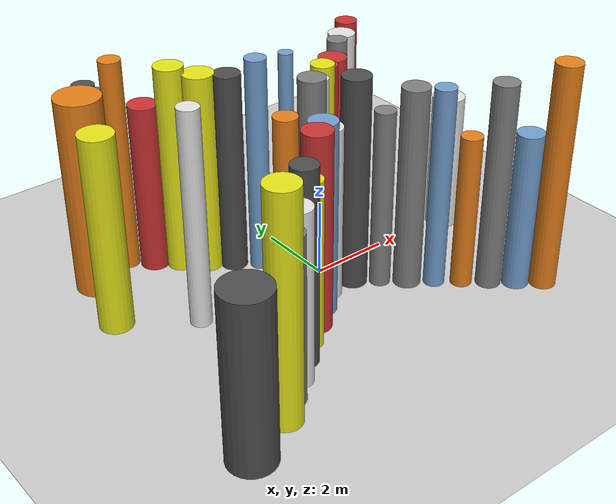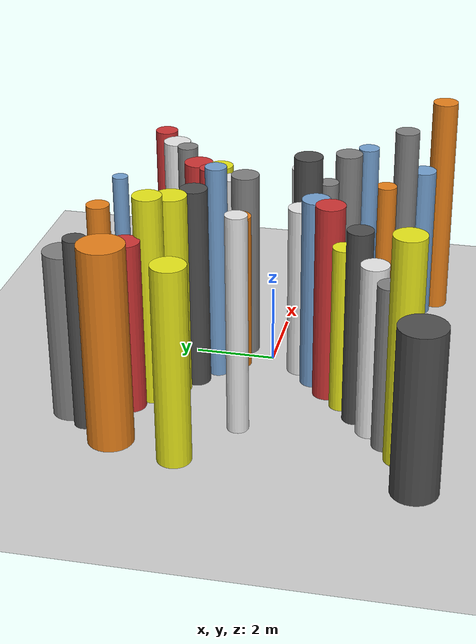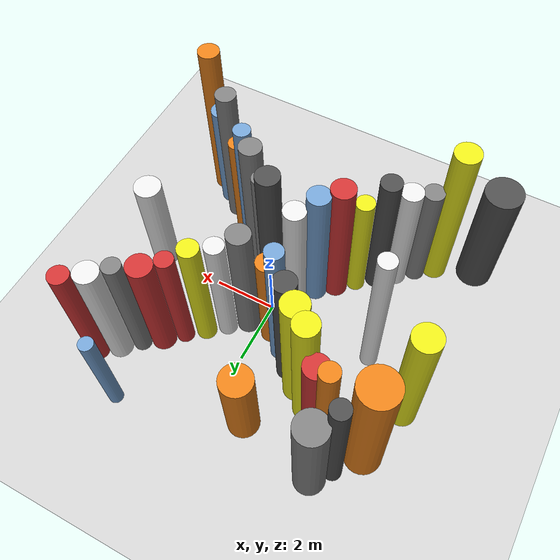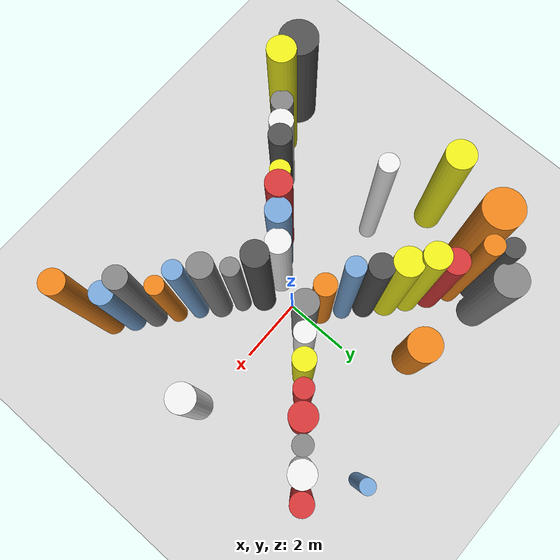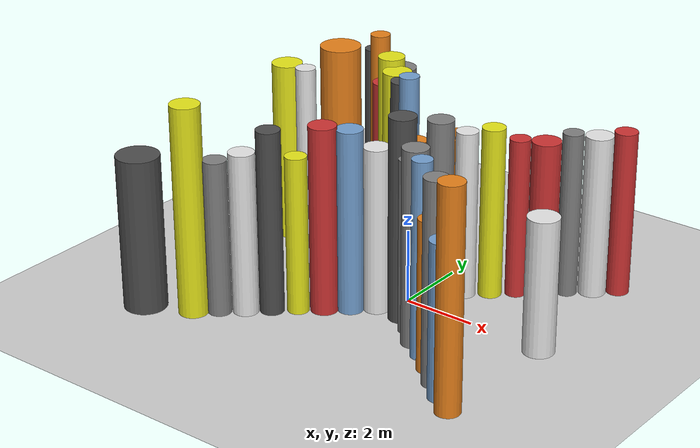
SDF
<?xml version='1.0'?>
<sdf version='1.6'>
  <world name='routeA_rl_v1__dense_recovery__rl_train__bottleneck_corridor__000070'>
    <!-- Sun light -->
    <light name='sun' type='directional'>
      <cast_shadows>1</cast_shadows>
      <pose>0 0 10 0 0 0</pose>
      <diffuse>0.8 0.8 0.8 1</diffuse>
      <specular>0.2 0.2 0.2 1</specular>
      <attenuation>
        <range>1000</range>
        <constant>0.9</constant>
        <linear>0.01</linear>
        <quadratic>0.001</quadratic>
      </attenuation>
      <direction>-0.5 0.1 -0.9</direction>
    </light>

    <!-- Ground plane -->
    <model name='ground_plane'>
      <static>1</static>
      <link name='link'>
        <collision name='collision'>
          <geometry>
            <plane>
              <normal>0 0 1</normal>
              <size>100 100</size>
            </plane>
          </geometry>
          <surface>
            <contact>
              <collide_bitmask>65535</collide_bitmask>
              <ode/>
            </contact>
            <friction>
              <ode>
                <mu>100</mu>
                <mu2>50</mu2>
              </ode>
              <torsional><ode/></torsional>
            </friction>
            <bounce/>
          </surface>
          <max_contacts>10</max_contacts>
        </collision>
        <visual name='visual'>
          <cast_shadows>0</cast_shadows>
          <geometry>
            <plane>
              <normal>0 0 1</normal>
              <size>100 100</size>
            </plane>
          </geometry>
          <material>
            <script>
              <uri>file://media/materials/scripts/gazebo.material</uri>
              <n>Gazebo/Grey</n>
            </script>
          </material>
        </visual>
      </link>
    </model>

    <!-- Environment -->
    <magnetic_field>6e-06 2.3e-05 -4.2e-05</magnetic_field>
    <atmosphere type='adiabatic'/>
    <physics name='default_physics' default='0' type='ode'>
      <gravity>0 0 -9.8</gravity>
      <max_step_size>0.004</max_step_size>
      <real_time_factor>1</real_time_factor>
      <real_time_update_rate>250</real_time_update_rate>
    </physics>
    <scene>
      <ambient>0.4 0.4 0.4 1</ambient>
      <background>0.7 0.7 0.7 1</background>
      <shadows>1</shadows>
    </scene>
    <wind/>
    <spherical_coordinates>
      <surface_model>EARTH_WGS84</surface_model>
      <latitude_deg>0</latitude_deg>
      <longitude_deg>0</longitude_deg>
      <elevation>0</elevation>
      <heading_deg>0</heading_deg>
    </spherical_coordinates>

    <!-- ============ OBSTACLES (40) ============ -->
    <model name='funnel_l_0'>
      <static>1</static>
      <link name='link'>
        <visual name='visual'>
          <geometry>
            <cylinder>
              <radius>0.3938</radius>
              <length>5.7354</length>
            </cylinder>
          </geometry>
          <material>
            <script>
              <n>Gazebo/Yellow</n>
              <uri>file://media/materials/scripts/gazebo.material</uri>
            </script>
            <ambient>0.9 0.9 0.1 1</ambient>
          </material>
        </visual>
        <collision name='collision'>
          <geometry>
            <cylinder>
              <radius>0.3938</radius>
              <length>5.7354</length>
            </cylinder>
          </geometry>
          <max_contacts>10</max_contacts>
          <surface>
            <contact><ode/></contact>
            <bounce/>
            <friction>
              <ode><mu>1</mu><mu2>1</mu2></ode>
              <torsional><ode/></torsional>
            </friction>
          </surface>
        </collision>
      </link>
      <pose>-4.0000 -3.8000 2.8677 0 0 0.0000</pose>
    </model>

    <model name='funnel_r_0'>
      <static>1</static>
      <link name='link'>
        <visual name='visual'>
          <geometry>
            <cylinder>
              <radius>0.2779</radius>
              <length>4.9308</length>
            </cylinder>
          </geometry>
          <material>
            <script>
              <n>Gazebo/DarkGrey</n>
              <uri>file://media/materials/scripts/gazebo.material</uri>
            </script>
            <ambient>0.3 0.3 0.3 1</ambient>
          </material>
        </visual>
        <collision name='collision'>
          <geometry>
            <cylinder>
              <radius>0.2779</radius>
              <length>4.9308</length>
            </cylinder>
          </geometry>
          <max_contacts>10</max_contacts>
          <surface>
            <contact><ode/></contact>
            <bounce/>
            <friction>
              <ode><mu>1</mu><mu2>1</mu2></ode>
              <torsional><ode/></torsional>
            </friction>
          </surface>
        </collision>
      </link>
      <pose>-4.0000 3.8000 2.4654 0 0 0.0000</pose>
    </model>

    <model name='funnel_l_1'>
      <static>1</static>
      <link name='link'>
        <visual name='visual'>
          <geometry>
            <cylinder>
              <radius>0.3140</radius>
              <length>4.2421</length>
            </cylinder>
          </geometry>
          <material>
            <script>
              <n>Gazebo/Grey</n>
              <uri>file://media/materials/scripts/gazebo.material</uri>
            </script>
            <ambient>0.5 0.5 0.5 1</ambient>
          </material>
        </visual>
        <collision name='collision'>
          <geometry>
            <cylinder>
              <radius>0.3140</radius>
              <length>4.2421</length>
            </cylinder>
          </geometry>
          <max_contacts>10</max_contacts>
          <surface>
            <contact><ode/></contact>
            <bounce/>
            <friction>
              <ode><mu>1</mu><mu2>1</mu2></ode>
              <torsional><ode/></torsional>
            </friction>
          </surface>
        </collision>
      </link>
      <pose>-3.4857 -3.3714 2.1211 0 0 0.0000</pose>
    </model>

    <model name='funnel_r_1'>
      <static>1</static>
      <link name='link'>
        <visual name='visual'>
          <geometry>
            <cylinder>
              <radius>0.2706</radius>
              <length>5.5764</length>
            </cylinder>
          </geometry>
          <material>
            <script>
              <n>Gazebo/Orange</n>
              <uri>file://media/materials/scripts/gazebo.material</uri>
            </script>
            <ambient>0.9 0.5 0.1 1</ambient>
          </material>
        </visual>
        <collision name='collision'>
          <geometry>
            <cylinder>
              <radius>0.2706</radius>
              <length>5.5764</length>
            </cylinder>
          </geometry>
          <max_contacts>10</max_contacts>
          <surface>
            <contact><ode/></contact>
            <bounce/>
            <friction>
              <ode><mu>1</mu><mu2>1</mu2></ode>
              <torsional><ode/></torsional>
            </friction>
          </surface>
        </collision>
      </link>
      <pose>-3.4857 3.3714 2.7882 0 0 0.0000</pose>
    </model>

    <model name='funnel_l_2'>
      <static>1</static>
      <link name='link'>
        <visual name='visual'>
          <geometry>
            <cylinder>
              <radius>0.3417</radius>
              <length>4.4376</length>
            </cylinder>
          </geometry>
          <material>
            <script>
              <n>Gazebo/White</n>
              <uri>file://media/materials/scripts/gazebo.material</uri>
            </script>
            <ambient>0.9 0.9 0.9 1</ambient>
          </material>
        </visual>
        <collision name='collision'>
          <geometry>
            <cylinder>
              <radius>0.3417</radius>
              <length>4.4376</length>
            </cylinder>
          </geometry>
          <max_contacts>10</max_contacts>
          <surface>
            <contact><ode/></contact>
            <bounce/>
            <friction>
              <ode><mu>1</mu><mu2>1</mu2></ode>
              <torsional><ode/></torsional>
            </friction>
          </surface>
        </collision>
      </link>
      <pose>-2.9714 -2.9429 2.2188 0 0 0.0000</pose>
    </model>

    <model name='funnel_r_2'>
      <static>1</static>
      <link name='link'>
        <visual name='visual'>
          <geometry>
            <cylinder>
              <radius>0.3644</radius>
              <length>4.4568</length>
            </cylinder>
          </geometry>
          <material>
            <script>
              <n>Gazebo/Red</n>
              <uri>file://media/materials/scripts/gazebo.material</uri>
            </script>
            <ambient>0.8 0.2 0.2 1</ambient>
          </material>
        </visual>
        <collision name='collision'>
          <geometry>
            <cylinder>
              <radius>0.3644</radius>
              <length>4.4568</length>
            </cylinder>
          </geometry>
          <max_contacts>10</max_contacts>
          <surface>
            <contact><ode/></contact>
            <bounce/>
            <friction>
              <ode><mu>1</mu><mu2>1</mu2></ode>
              <torsional><ode/></torsional>
            </friction>
          </surface>
        </collision>
      </link>
      <pose>-2.9714 2.9429 2.2284 0 0 0.0000</pose>
    </model>

    <model name='funnel_l_3'>
      <static>1</static>
      <link name='link'>
        <visual name='visual'>
          <geometry>
            <cylinder>
              <radius>0.3178</radius>
              <length>5.0241</length>
            </cylinder>
          </geometry>
          <material>
            <script>
              <n>Gazebo/DarkGrey</n>
              <uri>file://media/materials/scripts/gazebo.material</uri>
            </script>
            <ambient>0.3 0.3 0.3 1</ambient>
          </material>
        </visual>
        <collision name='collision'>
          <geometry>
            <cylinder>
              <radius>0.3178</radius>
              <length>5.0241</length>
            </cylinder>
          </geometry>
          <max_contacts>10</max_contacts>
          <surface>
            <contact><ode/></contact>
            <bounce/>
            <friction>
              <ode><mu>1</mu><mu2>1</mu2></ode>
              <torsional><ode/></torsional>
            </friction>
          </surface>
        </collision>
      </link>
      <pose>-2.4571 -2.5143 2.5121 0 0 0.0000</pose>
    </model>

    <model name='funnel_r_3'>
      <static>1</static>
      <link name='link'>
        <visual name='visual'>
          <geometry>
            <cylinder>
              <radius>0.3599</radius>
              <length>5.4372</length>
            </cylinder>
          </geometry>
          <material>
            <script>
              <n>Gazebo/Yellow</n>
              <uri>file://media/materials/scripts/gazebo.material</uri>
            </script>
            <ambient>0.9 0.9 0.1 1</ambient>
          </material>
        </visual>
        <collision name='collision'>
          <geometry>
            <cylinder>
              <radius>0.3599</radius>
              <length>5.4372</length>
            </cylinder>
          </geometry>
          <max_contacts>10</max_contacts>
          <surface>
            <contact><ode/></contact>
            <bounce/>
            <friction>
              <ode><mu>1</mu><mu2>1</mu2></ode>
              <torsional><ode/></torsional>
            </friction>
          </surface>
        </collision>
      </link>
      <pose>-2.4571 2.5143 2.7186 0 0 0.0000</pose>
    </model>

    <model name='funnel_l_4'>
      <static>1</static>
      <link name='link'>
        <visual name='visual'>
          <geometry>
            <cylinder>
              <radius>0.2877</radius>
              <length>4.3119</length>
            </cylinder>
          </geometry>
          <material>
            <script>
              <n>Gazebo/Yellow</n>
              <uri>file://media/materials/scripts/gazebo.material</uri>
            </script>
            <ambient>0.9 0.9 0.1 1</ambient>
          </material>
        </visual>
        <collision name='collision'>
          <geometry>
            <cylinder>
              <radius>0.2877</radius>
              <length>4.3119</length>
            </cylinder>
          </geometry>
          <max_contacts>10</max_contacts>
          <surface>
            <contact><ode/></contact>
            <bounce/>
            <friction>
              <ode><mu>1</mu><mu2>1</mu2></ode>
              <torsional><ode/></torsional>
            </friction>
          </surface>
        </collision>
      </link>
      <pose>-1.9429 -2.0857 2.1559 0 0 0.0000</pose>
    </model>

    <model name='funnel_r_4'>
      <static>1</static>
      <link name='link'>
        <visual name='visual'>
          <geometry>
            <cylinder>
              <radius>0.3925</radius>
              <length>5.2626</length>
            </cylinder>
          </geometry>
          <material>
            <script>
              <n>Gazebo/Yellow</n>
              <uri>file://media/materials/scripts/gazebo.material</uri>
            </script>
            <ambient>0.9 0.9 0.1 1</ambient>
          </material>
        </visual>
        <collision name='collision'>
          <geometry>
            <cylinder>
              <radius>0.3925</radius>
              <length>5.2626</length>
            </cylinder>
          </geometry>
          <max_contacts>10</max_contacts>
          <surface>
            <contact><ode/></contact>
            <bounce/>
            <friction>
              <ode><mu>1</mu><mu2>1</mu2></ode>
              <torsional><ode/></torsional>
            </friction>
          </surface>
        </collision>
      </link>
      <pose>-1.9429 2.0857 2.6313 0 0 0.0000</pose>
    </model>

    <model name='funnel_l_5'>
      <static>1</static>
      <link name='link'>
        <visual name='visual'>
          <geometry>
            <cylinder>
              <radius>0.3652</radius>
              <length>5.1216</length>
            </cylinder>
          </geometry>
          <material>
            <script>
              <n>Gazebo/Red</n>
              <uri>file://media/materials/scripts/gazebo.material</uri>
            </script>
            <ambient>0.8 0.2 0.2 1</ambient>
          </material>
        </visual>
        <collision name='collision'>
          <geometry>
            <cylinder>
              <radius>0.3652</radius>
              <length>5.1216</length>
            </cylinder>
          </geometry>
          <max_contacts>10</max_contacts>
          <surface>
            <contact><ode/></contact>
            <bounce/>
            <friction>
              <ode><mu>1</mu><mu2>1</mu2></ode>
              <torsional><ode/></torsional>
            </friction>
          </surface>
        </collision>
      </link>
      <pose>-1.4286 -1.6571 2.5608 0 0 0.0000</pose>
    </model>

    <model name='funnel_r_5'>
      <static>1</static>
      <link name='link'>
        <visual name='visual'>
          <geometry>
            <cylinder>
              <radius>0.3339</radius>
              <length>5.2576</length>
            </cylinder>
          </geometry>
          <material>
            <script>
              <n>Gazebo/DarkGrey</n>
              <uri>file://media/materials/scripts/gazebo.material</uri>
            </script>
            <ambient>0.3 0.3 0.3 1</ambient>
          </material>
        </visual>
        <collision name='collision'>
          <geometry>
            <cylinder>
              <radius>0.3339</radius>
              <length>5.2576</length>
            </cylinder>
          </geometry>
          <max_contacts>10</max_contacts>
          <surface>
            <contact><ode/></contact>
            <bounce/>
            <friction>
              <ode><mu>1</mu><mu2>1</mu2></ode>
              <torsional><ode/></torsional>
            </friction>
          </surface>
        </collision>
      </link>
      <pose>-1.4286 1.6571 2.6288 0 0 0.0000</pose>
    </model>

    <model name='funnel_l_6'>
      <static>1</static>
      <link name='link'>
        <visual name='visual'>
          <geometry>
            <cylinder>
              <radius>0.3517</radius>
              <length>5.0143</length>
            </cylinder>
          </geometry>
          <material>
            <script>
              <n>Gazebo/Blue</n>
              <uri>file://media/materials/scripts/gazebo.material</uri>
            </script>
            <ambient>0.447 0.624 0.812 1</ambient>
          </material>
        </visual>
        <collision name='collision'>
          <geometry>
            <cylinder>
              <radius>0.3517</radius>
              <length>5.0143</length>
            </cylinder>
          </geometry>
          <max_contacts>10</max_contacts>
          <surface>
            <contact><ode/></contact>
            <bounce/>
            <friction>
              <ode><mu>1</mu><mu2>1</mu2></ode>
              <torsional><ode/></torsional>
            </friction>
          </surface>
        </collision>
      </link>
      <pose>-0.9143 -1.2286 2.5071 0 0 0.0000</pose>
    </model>

    <model name='funnel_r_6'>
      <static>1</static>
      <link name='link'>
        <visual name='visual'>
          <geometry>
            <cylinder>
              <radius>0.2664</radius>
              <length>5.6462</length>
            </cylinder>
          </geometry>
          <material>
            <script>
              <n>Gazebo/Blue</n>
              <uri>file://media/materials/scripts/gazebo.material</uri>
            </script>
            <ambient>0.447 0.624 0.812 1</ambient>
          </material>
        </visual>
        <collision name='collision'>
          <geometry>
            <cylinder>
              <radius>0.2664</radius>
              <length>5.6462</length>
            </cylinder>
          </geometry>
          <max_contacts>10</max_contacts>
          <surface>
            <contact><ode/></contact>
            <bounce/>
            <friction>
              <ode><mu>1</mu><mu2>1</mu2></ode>
              <torsional><ode/></torsional>
            </friction>
          </surface>
        </collision>
      </link>
      <pose>-0.9143 1.2286 2.8231 0 0 0.0000</pose>
    </model>

    <model name='funnel_l_7'>
      <static>1</static>
      <link name='link'>
        <visual name='visual'>
          <geometry>
            <cylinder>
              <radius>0.3499</radius>
              <length>4.5294</length>
            </cylinder>
          </geometry>
          <material>
            <script>
              <n>Gazebo/White</n>
              <uri>file://media/materials/scripts/gazebo.material</uri>
            </script>
            <ambient>0.9 0.9 0.9 1</ambient>
          </material>
        </visual>
        <collision name='collision'>
          <geometry>
            <cylinder>
              <radius>0.3499</radius>
              <length>4.5294</length>
            </cylinder>
          </geometry>
          <max_contacts>10</max_contacts>
          <surface>
            <contact><ode/></contact>
            <bounce/>
            <friction>
              <ode><mu>1</mu><mu2>1</mu2></ode>
              <torsional><ode/></torsional>
            </friction>
          </surface>
        </collision>
      </link>
      <pose>-0.4000 -0.8000 2.2647 0 0 0.0000</pose>
    </model>

    <model name='funnel_r_7'>
      <static>1</static>
      <link name='link'>
        <visual name='visual'>
          <geometry>
            <cylinder>
              <radius>0.3172</radius>
              <length>4.1648</length>
            </cylinder>
          </geometry>
          <material>
            <script>
              <n>Gazebo/Orange</n>
              <uri>file://media/materials/scripts/gazebo.material</uri>
            </script>
            <ambient>0.9 0.5 0.1 1</ambient>
          </material>
        </visual>
        <collision name='collision'>
          <geometry>
            <cylinder>
              <radius>0.3172</radius>
              <length>4.1648</length>
            </cylinder>
          </geometry>
          <max_contacts>10</max_contacts>
          <surface>
            <contact><ode/></contact>
            <bounce/>
            <friction>
              <ode><mu>1</mu><mu2>1</mu2></ode>
              <torsional><ode/></torsional>
            </friction>
          </surface>
        </collision>
      </link>
      <pose>-0.4000 0.8000 2.0824 0 0 0.0000</pose>
    </model>

    <model name='funnel_out_l_0'>
      <static>1</static>
      <link name='link'>
        <visual name='visual'>
          <geometry>
            <cylinder>
              <radius>0.3571</radius>
              <length>5.5500</length>
            </cylinder>
          </geometry>
          <material>
            <script>
              <n>Gazebo/DarkGrey</n>
              <uri>file://media/materials/scripts/gazebo.material</uri>
            </script>
            <ambient>0.3 0.3 0.3 1</ambient>
          </material>
        </visual>
        <collision name='collision'>
          <geometry>
            <cylinder>
              <radius>0.3571</radius>
              <length>5.5500</length>
            </cylinder>
          </geometry>
          <max_contacts>10</max_contacts>
          <surface>
            <contact><ode/></contact>
            <bounce/>
            <friction>
              <ode><mu>1</mu><mu2>1</mu2></ode>
              <torsional><ode/></torsional>
            </friction>
          </surface>
        </collision>
      </link>
      <pose>0.4000 -0.8000 2.7750 0 0 0.0000</pose>
    </model>

    <model name='funnel_out_r_0'>
      <static>1</static>
      <link name='link'>
        <visual name='visual'>
          <geometry>
            <cylinder>
              <radius>0.3539</radius>
              <length>4.9328</length>
            </cylinder>
          </geometry>
          <material>
            <script>
              <n>Gazebo/Grey</n>
              <uri>file://media/materials/scripts/gazebo.material</uri>
            </script>
            <ambient>0.5 0.5 0.5 1</ambient>
          </material>
        </visual>
        <collision name='collision'>
          <geometry>
            <cylinder>
              <radius>0.3539</radius>
              <length>4.9328</length>
            </cylinder>
          </geometry>
          <max_contacts>10</max_contacts>
          <surface>
            <contact><ode/></contact>
            <bounce/>
            <friction>
              <ode><mu>1</mu><mu2>1</mu2></ode>
              <torsional><ode/></torsional>
            </friction>
          </surface>
        </collision>
      </link>
      <pose>0.4000 0.8000 2.4664 0 0 0.0000</pose>
    </model>

    <model name='funnel_out_l_1'>
      <static>1</static>
      <link name='link'>
        <visual name='visual'>
          <geometry>
            <cylinder>
              <radius>0.2581</radius>
              <length>4.6932</length>
            </cylinder>
          </geometry>
          <material>
            <script>
              <n>Gazebo/Grey</n>
              <uri>file://media/materials/scripts/gazebo.material</uri>
            </script>
            <ambient>0.5 0.5 0.5 1</ambient>
          </material>
        </visual>
        <collision name='collision'>
          <geometry>
            <cylinder>
              <radius>0.2581</radius>
              <length>4.6932</length>
            </cylinder>
          </geometry>
          <max_contacts>10</max_contacts>
          <surface>
            <contact><ode/></contact>
            <bounce/>
            <friction>
              <ode><mu>1</mu><mu2>1</mu2></ode>
              <torsional><ode/></torsional>
            </friction>
          </surface>
        </collision>
      </link>
      <pose>0.9143 -1.2286 2.3466 0 0 0.0000</pose>
    </model>

    <model name='funnel_out_r_1'>
      <static>1</static>
      <link name='link'>
        <visual name='visual'>
          <geometry>
            <cylinder>
              <radius>0.2920</radius>
              <length>4.6092</length>
            </cylinder>
          </geometry>
          <material>
            <script>
              <n>Gazebo/White</n>
              <uri>file://media/materials/scripts/gazebo.material</uri>
            </script>
            <ambient>0.9 0.9 0.9 1</ambient>
          </material>
        </visual>
        <collision name='collision'>
          <geometry>
            <cylinder>
              <radius>0.2920</radius>
              <length>4.6092</length>
            </cylinder>
          </geometry>
          <max_contacts>10</max_contacts>
          <surface>
            <contact><ode/></contact>
            <bounce/>
            <friction>
              <ode><mu>1</mu><mu2>1</mu2></ode>
              <torsional><ode/></torsional>
            </friction>
          </surface>
        </collision>
      </link>
      <pose>0.9143 1.2286 2.3046 0 0 0.0000</pose>
    </model>

    <model name='funnel_out_l_2'>
      <static>1</static>
      <link name='link'>
        <visual name='visual'>
          <geometry>
            <cylinder>
              <radius>0.3419</radius>
              <length>5.2875</length>
            </cylinder>
          </geometry>
          <material>
            <script>
              <n>Gazebo/Grey</n>
              <uri>file://media/materials/scripts/gazebo.material</uri>
            </script>
            <ambient>0.5 0.5 0.5 1</ambient>
          </material>
        </visual>
        <collision name='collision'>
          <geometry>
            <cylinder>
              <radius>0.3419</radius>
              <length>5.2875</length>
            </cylinder>
          </geometry>
          <max_contacts>10</max_contacts>
          <surface>
            <contact><ode/></contact>
            <bounce/>
            <friction>
              <ode><mu>1</mu><mu2>1</mu2></ode>
              <torsional><ode/></torsional>
            </friction>
          </surface>
        </collision>
      </link>
      <pose>1.4286 -1.6571 2.6437 0 0 0.0000</pose>
    </model>

    <model name='funnel_out_r_2'>
      <static>1</static>
      <link name='link'>
        <visual name='visual'>
          <geometry>
            <cylinder>
              <radius>0.3105</radius>
              <length>4.7007</length>
            </cylinder>
          </geometry>
          <material>
            <script>
              <n>Gazebo/Yellow</n>
              <uri>file://media/materials/scripts/gazebo.material</uri>
            </script>
            <ambient>0.9 0.9 0.1 1</ambient>
          </material>
        </visual>
        <collision name='collision'>
          <geometry>
            <cylinder>
              <radius>0.3105</radius>
              <length>4.7007</length>
            </cylinder>
          </geometry>
          <max_contacts>10</max_contacts>
          <surface>
            <contact><ode/></contact>
            <bounce/>
            <friction>
              <ode><mu>1</mu><mu2>1</mu2></ode>
              <torsional><ode/></torsional>
            </friction>
          </surface>
        </collision>
      </link>
      <pose>1.4286 1.6571 2.3503 0 0 0.0000</pose>
    </model>

    <model name='funnel_out_l_3'>
      <static>1</static>
      <link name='link'>
        <visual name='visual'>
          <geometry>
            <cylinder>
              <radius>0.2628</radius>
              <length>5.2757</length>
            </cylinder>
          </geometry>
          <material>
            <script>
              <n>Gazebo/Blue</n>
              <uri>file://media/materials/scripts/gazebo.material</uri>
            </script>
            <ambient>0.447 0.624 0.812 1</ambient>
          </material>
        </visual>
        <collision name='collision'>
          <geometry>
            <cylinder>
              <radius>0.2628</radius>
              <length>5.2757</length>
            </cylinder>
          </geometry>
          <max_contacts>10</max_contacts>
          <surface>
            <contact><ode/></contact>
            <bounce/>
            <friction>
              <ode><mu>1</mu><mu2>1</mu2></ode>
              <torsional><ode/></torsional>
            </friction>
          </surface>
        </collision>
      </link>
      <pose>1.9429 -2.0857 2.6379 0 0 0.0000</pose>
    </model>

    <model name='funnel_out_r_3'>
      <static>1</static>
      <link name='link'>
        <visual name='visual'>
          <geometry>
            <cylinder>
              <radius>0.2762</radius>
              <length>4.3844</length>
            </cylinder>
          </geometry>
          <material>
            <script>
              <n>Gazebo/Red</n>
              <uri>file://media/materials/scripts/gazebo.material</uri>
            </script>
            <ambient>0.8 0.2 0.2 1</ambient>
          </material>
        </visual>
        <collision name='collision'>
          <geometry>
            <cylinder>
              <radius>0.2762</radius>
              <length>4.3844</length>
            </cylinder>
          </geometry>
          <max_contacts>10</max_contacts>
          <surface>
            <contact><ode/></contact>
            <bounce/>
            <friction>
              <ode><mu>1</mu><mu2>1</mu2></ode>
              <torsional><ode/></torsional>
            </friction>
          </surface>
        </collision>
      </link>
      <pose>1.9429 2.0857 2.1922 0 0 0.0000</pose>
    </model>

    <model name='funnel_out_l_4'>
      <static>1</static>
      <link name='link'>
        <visual name='visual'>
          <geometry>
            <cylinder>
              <radius>0.2679</radius>
              <length>4.0515</length>
            </cylinder>
          </geometry>
          <material>
            <script>
              <n>Gazebo/Orange</n>
              <uri>file://media/materials/scripts/gazebo.material</uri>
            </script>
            <ambient>0.9 0.5 0.1 1</ambient>
          </material>
        </visual>
        <collision name='collision'>
          <geometry>
            <cylinder>
              <radius>0.2679</radius>
              <length>4.0515</length>
            </cylinder>
          </geometry>
          <max_contacts>10</max_contacts>
          <surface>
            <contact><ode/></contact>
            <bounce/>
            <friction>
              <ode><mu>1</mu><mu2>1</mu2></ode>
              <torsional><ode/></torsional>
            </friction>
          </surface>
        </collision>
      </link>
      <pose>2.4571 -2.5143 2.0257 0 0 0.0000</pose>
    </model>

    <model name='funnel_out_r_4'>
      <static>1</static>
      <link name='link'>
        <visual name='visual'>
          <geometry>
            <cylinder>
              <radius>0.3837</radius>
              <length>4.3027</length>
            </cylinder>
          </geometry>
          <material>
            <script>
              <n>Gazebo/Red</n>
              <uri>file://media/materials/scripts/gazebo.material</uri>
            </script>
            <ambient>0.8 0.2 0.2 1</ambient>
          </material>
        </visual>
        <collision name='collision'>
          <geometry>
            <cylinder>
              <radius>0.3837</radius>
              <length>4.3027</length>
            </cylinder>
          </geometry>
          <max_contacts>10</max_contacts>
          <surface>
            <contact><ode/></contact>
            <bounce/>
            <friction>
              <ode><mu>1</mu><mu2>1</mu2></ode>
              <torsional><ode/></torsional>
            </friction>
          </surface>
        </collision>
      </link>
      <pose>2.4571 2.5143 2.1514 0 0 0.0000</pose>
    </model>

    <model name='funnel_out_l_5'>
      <static>1</static>
      <link name='link'>
        <visual name='visual'>
          <geometry>
            <cylinder>
              <radius>0.3156</radius>
              <length>5.4079</length>
            </cylinder>
          </geometry>
          <material>
            <script>
              <n>Gazebo/Grey</n>
              <uri>file://media/materials/scripts/gazebo.material</uri>
            </script>
            <ambient>0.5 0.5 0.5 1</ambient>
          </material>
        </visual>
        <collision name='collision'>
          <geometry>
            <cylinder>
              <radius>0.3156</radius>
              <length>5.4079</length>
            </cylinder>
          </geometry>
          <max_contacts>10</max_contacts>
          <surface>
            <contact><ode/></contact>
            <bounce/>
            <friction>
              <ode><mu>1</mu><mu2>1</mu2></ode>
              <torsional><ode/></torsional>
            </friction>
          </surface>
        </collision>
      </link>
      <pose>2.9714 -2.9429 2.7039 0 0 0.0000</pose>
    </model>

    <model name='funnel_out_r_5'>
      <static>1</static>
      <link name='link'>
        <visual name='visual'>
          <geometry>
            <cylinder>
              <radius>0.2737</radius>
              <length>4.5219</length>
            </cylinder>
          </geometry>
          <material>
            <script>
              <n>Gazebo/Grey</n>
              <uri>file://media/materials/scripts/gazebo.material</uri>
            </script>
            <ambient>0.5 0.5 0.5 1</ambient>
          </material>
        </visual>
        <collision name='collision'>
          <geometry>
            <cylinder>
              <radius>0.2737</radius>
              <length>4.5219</length>
            </cylinder>
          </geometry>
          <max_contacts>10</max_contacts>
          <surface>
            <contact><ode/></contact>
            <bounce/>
            <friction>
              <ode><mu>1</mu><mu2>1</mu2></ode>
              <torsional><ode/></torsional>
            </friction>
          </surface>
        </collision>
      </link>
      <pose>2.9714 2.9429 2.2610 0 0 0.0000</pose>
    </model>

    <model name='funnel_out_l_6'>
      <static>1</static>
      <link name='link'>
        <visual name='visual'>
          <geometry>
            <cylinder>
              <radius>0.3311</radius>
              <length>4.1444</length>
            </cylinder>
          </geometry>
          <material>
            <script>
              <n>Gazebo/Blue</n>
              <uri>file://media/materials/scripts/gazebo.material</uri>
            </script>
            <ambient>0.447 0.624 0.812 1</ambient>
          </material>
        </visual>
        <collision name='collision'>
          <geometry>
            <cylinder>
              <radius>0.3311</radius>
              <length>4.1444</length>
            </cylinder>
          </geometry>
          <max_contacts>10</max_contacts>
          <surface>
            <contact><ode/></contact>
            <bounce/>
            <friction>
              <ode><mu>1</mu><mu2>1</mu2></ode>
              <torsional><ode/></torsional>
            </friction>
          </surface>
        </collision>
      </link>
      <pose>3.4857 -3.3714 2.0722 0 0 0.0000</pose>
    </model>

    <model name='funnel_out_r_6'>
      <static>1</static>
      <link name='link'>
        <visual name='visual'>
          <geometry>
            <cylinder>
              <radius>0.3680</radius>
              <length>4.4334</length>
            </cylinder>
          </geometry>
          <material>
            <script>
              <n>Gazebo/White</n>
              <uri>file://media/materials/scripts/gazebo.material</uri>
            </script>
            <ambient>0.9 0.9 0.9 1</ambient>
          </material>
        </visual>
        <collision name='collision'>
          <geometry>
            <cylinder>
              <radius>0.3680</radius>
              <length>4.4334</length>
            </cylinder>
          </geometry>
          <max_contacts>10</max_contacts>
          <surface>
            <contact><ode/></contact>
            <bounce/>
            <friction>
              <ode><mu>1</mu><mu2>1</mu2></ode>
              <torsional><ode/></torsional>
            </friction>
          </surface>
        </collision>
      </link>
      <pose>3.4857 3.3714 2.2167 0 0 0.0000</pose>
    </model>

    <model name='funnel_out_l_7'>
      <static>1</static>
      <link name='link'>
        <visual name='visual'>
          <geometry>
            <cylinder>
              <radius>0.3303</radius>
              <length>5.9004</length>
            </cylinder>
          </geometry>
          <material>
            <script>
              <n>Gazebo/Orange</n>
              <uri>file://media/materials/scripts/gazebo.material</uri>
            </script>
            <ambient>0.9 0.5 0.1 1</ambient>
          </material>
        </visual>
        <collision name='collision'>
          <geometry>
            <cylinder>
              <radius>0.3303</radius>
              <length>5.9004</length>
            </cylinder>
          </geometry>
          <max_contacts>10</max_contacts>
          <surface>
            <contact><ode/></contact>
            <bounce/>
            <friction>
              <ode><mu>1</mu><mu2>1</mu2></ode>
              <torsional><ode/></torsional>
            </friction>
          </surface>
        </collision>
      </link>
      <pose>4.0000 -3.8000 2.9502 0 0 0.0000</pose>
    </model>

    <model name='funnel_out_r_7'>
      <static>1</static>
      <link name='link'>
        <visual name='visual'>
          <geometry>
            <cylinder>
              <radius>0.3036</radius>
              <length>4.5282</length>
            </cylinder>
          </geometry>
          <material>
            <script>
              <n>Gazebo/Red</n>
              <uri>file://media/materials/scripts/gazebo.material</uri>
            </script>
            <ambient>0.8 0.2 0.2 1</ambient>
          </material>
        </visual>
        <collision name='collision'>
          <geometry>
            <cylinder>
              <radius>0.3036</radius>
              <length>4.5282</length>
            </cylinder>
          </geometry>
          <max_contacts>10</max_contacts>
          <surface>
            <contact><ode/></contact>
            <bounce/>
            <friction>
              <ode><mu>1</mu><mu2>1</mu2></ode>
              <torsional><ode/></torsional>
            </friction>
          </surface>
        </collision>
      </link>
      <pose>4.0000 3.8000 2.2641 0 0 0.0000</pose>
    </model>

    <model name='bn_scatter_0'>
      <static>1</static>
      <link name='link'>
        <visual name='visual'>
          <geometry>
            <cylinder>
              <radius>0.4724</radius>
              <length>4.3434</length>
            </cylinder>
          </geometry>
          <material>
            <script>
              <n>Gazebo/Grey</n>
              <uri>file://media/materials/scripts/gazebo.material</uri>
            </script>
            <ambient>0.5 0.5 0.5 1</ambient>
          </material>
        </visual>
        <collision name='collision'>
          <geometry>
            <cylinder>
              <radius>0.4724</radius>
              <length>4.3434</length>
            </cylinder>
          </geometry>
          <max_contacts>10</max_contacts>
          <surface>
            <contact><ode/></contact>
            <bounce/>
            <friction>
              <ode><mu>1</mu><mu2>1</mu2></ode>
              <torsional><ode/></torsional>
            </friction>
          </surface>
        </collision>
      </link>
      <pose>-3.5246 4.2901 2.1717 0 0 0.0000</pose>
    </model>

    <model name='bn_scatter_1'>
      <static>1</static>
      <link name='link'>
        <visual name='visual'>
          <geometry>
            <cylinder>
              <radius>0.4891</radius>
              <length>3.1370</length>
            </cylinder>
          </geometry>
          <material>
            <script>
              <n>Gazebo/Orange</n>
              <uri>file://media/materials/scripts/gazebo.material</uri>
            </script>
            <ambient>0.9 0.5 0.1 1</ambient>
          </material>
        </visual>
        <collision name='collision'>
          <geometry>
            <cylinder>
              <radius>0.4891</radius>
              <length>3.1370</length>
            </cylinder>
          </geometry>
          <max_contacts>10</max_contacts>
          <surface>
            <contact><ode/></contact>
            <bounce/>
            <friction>
              <ode><mu>1</mu><mu2>1</mu2></ode>
              <torsional><ode/></torsional>
            </friction>
          </surface>
        </collision>
      </link>
      <pose>-1.0832 3.7144 1.5685 0 0 0.0000</pose>
    </model>

    <model name='bn_scatter_2'>
      <static>1</static>
      <link name='link'>
        <visual name='visual'>
          <geometry>
            <cylinder>
              <radius>0.4176</radius>
              <length>5.0200</length>
            </cylinder>
          </geometry>
          <material>
            <script>
              <n>Gazebo/Yellow</n>
              <uri>file://media/materials/scripts/gazebo.material</uri>
            </script>
            <ambient>0.9 0.9 0.1 1</ambient>
          </material>
        </visual>
        <collision name='collision'>
          <geometry>
            <cylinder>
              <radius>0.4176</radius>
              <length>5.0200</length>
            </cylinder>
          </geometry>
          <max_contacts>10</max_contacts>
          <surface>
            <contact><ode/></contact>
            <bounce/>
            <friction>
              <ode><mu>1</mu><mu2>1</mu2></ode>
              <torsional><ode/></torsional>
            </friction>
          </surface>
        </collision>
      </link>
      <pose>-5.0551 1.3159 2.5100 0 0 0.0000</pose>
    </model>

    <model name='bn_scatter_3'>
      <static>1</static>
      <link name='link'>
        <visual name='visual'>
          <geometry>
            <cylinder>
              <radius>0.5630</radius>
              <length>5.1184</length>
            </cylinder>
          </geometry>
          <material>
            <script>
              <n>Gazebo/Orange</n>
              <uri>file://media/materials/scripts/gazebo.material</uri>
            </script>
            <ambient>0.9 0.5 0.1 1</ambient>
          </material>
        </visual>
        <collision name='collision'>
          <geometry>
            <cylinder>
              <radius>0.5630</radius>
              <length>5.1184</length>
            </cylinder>
          </geometry>
          <max_contacts>10</max_contacts>
          <surface>
            <contact><ode/></contact>
            <bounce/>
            <friction>
              <ode><mu>1</mu><mu2>1</mu2></ode>
              <torsional><ode/></torsional>
            </friction>
          </surface>
        </collision>
      </link>
      <pose>-4.5656 2.9948 2.5592 0 0 0.0000</pose>
    </model>

    <model name='bn_scatter_4'>
      <static>1</static>
      <link name='link'>
        <visual name='visual'>
          <geometry>
            <cylinder>
              <radius>0.4146</radius>
              <length>3.6775</length>
            </cylinder>
          </geometry>
          <material>
            <script>
              <n>Gazebo/White</n>
              <uri>file://media/materials/scripts/gazebo.material</uri>
            </script>
            <ambient>0.9 0.9 0.9 1</ambient>
          </material>
        </visual>
        <collision name='collision'>
          <geometry>
            <cylinder>
              <radius>0.4146</radius>
              <length>3.6775</length>
            </cylinder>
          </geometry>
          <max_contacts>10</max_contacts>
          <surface>
            <contact><ode/></contact>
            <bounce/>
            <friction>
              <ode><mu>1</mu><mu2>1</mu2></ode>
              <torsional><ode/></torsional>
            </friction>
          </surface>
        </collision>
      </link>
      <pose>4.1124 -0.1223 1.8387 0 0 0.0000</pose>
    </model>

    <model name='bn_scatter_5'>
      <static>1</static>
      <link name='link'>
        <visual name='visual'>
          <geometry>
            <cylinder>
              <radius>0.5701</radius>
              <length>4.2231</length>
            </cylinder>
          </geometry>
          <material>
            <script>
              <n>Gazebo/DarkGrey</n>
              <uri>file://media/materials/scripts/gazebo.material</uri>
            </script>
            <ambient>0.3 0.3 0.3 1</ambient>
          </material>
        </visual>
        <collision name='collision'>
          <geometry>
            <cylinder>
              <radius>0.5701</radius>
              <length>4.2231</length>
            </cylinder>
          </geometry>
          <max_contacts>10</max_contacts>
          <surface>
            <contact><ode/></contact>
            <bounce/>
            <friction>
              <ode><mu>1</mu><mu2>1</mu2></ode>
              <torsional><ode/></torsional>
            </friction>
          </surface>
        </collision>
      </link>
      <pose>-5.2280 -4.2810 2.1115 0 0 0.0000</pose>
    </model>

    <model name='bn_scatter_6'>
      <static>1</static>
      <link name='link'>
        <visual name='visual'>
          <geometry>
            <cylinder>
              <radius>0.2161</radius>
              <length>3.6138</length>
            </cylinder>
          </geometry>
          <material>
            <script>
              <n>Gazebo/Blue</n>
              <uri>file://media/materials/scripts/gazebo.material</uri>
            </script>
            <ambient>0.447 0.624 0.812 1</ambient>
          </material>
        </visual>
        <collision name='collision'>
          <geometry>
            <cylinder>
              <radius>0.2161</radius>
              <length>3.6138</length>
            </cylinder>
          </geometry>
          <max_contacts>10</max_contacts>
          <surface>
            <contact><ode/></contact>
            <bounce/>
            <friction>
              <ode><mu>1</mu><mu2>1</mu2></ode>
              <torsional><ode/></torsional>
            </friction>
          </surface>
        </collision>
      </link>
      <pose>2.6731 4.7910 1.8069 0 0 0.0000</pose>
    </model>

    <model name='bn_scatter_7'>
      <static>1</static>
      <link name='link'>
        <visual name='visual'>
          <geometry>
            <cylinder>
              <radius>0.2660</radius>
              <length>5.5984</length>
            </cylinder>
          </geometry>
          <material>
            <script>
              <n>Gazebo/White</n>
              <uri>file://media/materials/scripts/gazebo.material</uri>
            </script>
            <ambient>0.9 0.9 0.9 1</ambient>
          </material>
        </visual>
        <collision name='collision'>
          <geometry>
            <cylinder>
              <radius>0.2660</radius>
              <length>5.5984</length>
            </cylinder>
          </geometry>
          <max_contacts>10</max_contacts>
          <surface>
            <contact><ode/></contact>
            <bounce/>
            <friction>
              <ode><mu>1</mu><mu2>1</mu2></ode>
              <torsional><ode/></torsional>
            </friction>
          </surface>
        </collision>
      </link>
      <pose>-3.4525 0.1626 2.7992 0 0 0.0000</pose>
    </model>

    <!-- GUI camera -->
    <gui fullscreen='0'>
      <camera name='user_camera'>
        <pose>-15 0 18 0 0.85 0.15</pose>
        <view_controller>orbit</view_controller>
        <projection_type>perspective</projection_type>
      </camera>
    </gui>
  </world>
</sdf>
